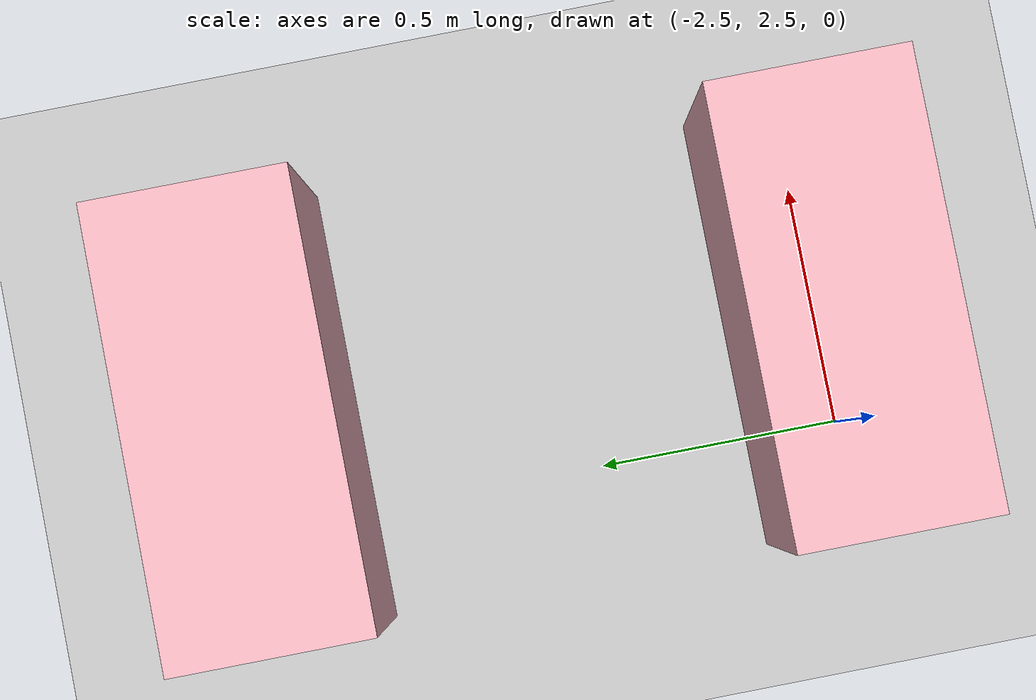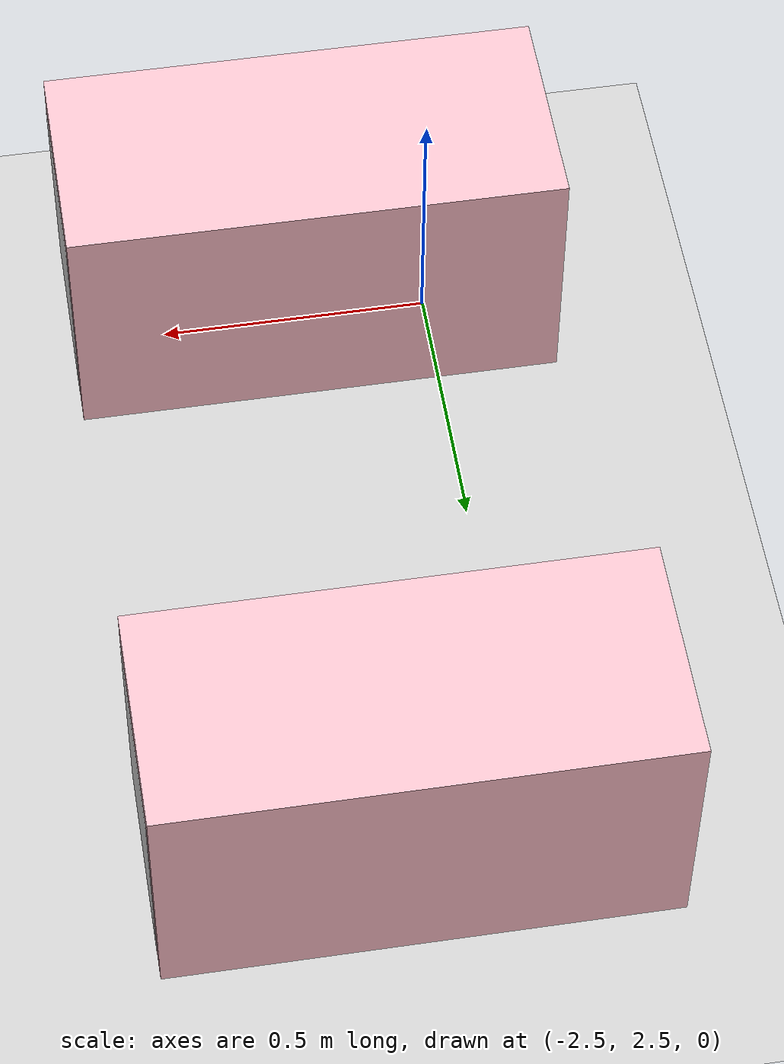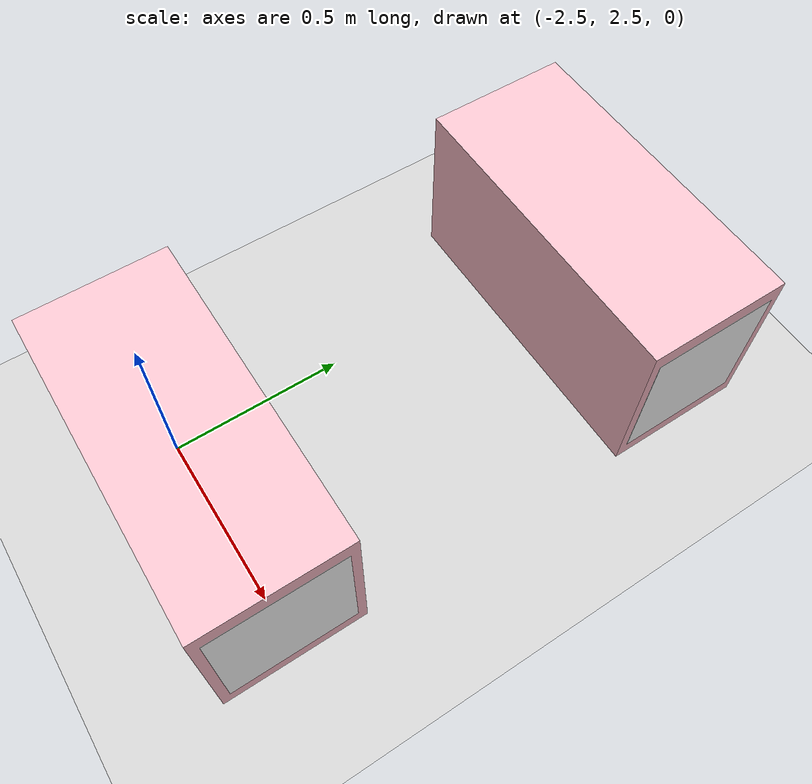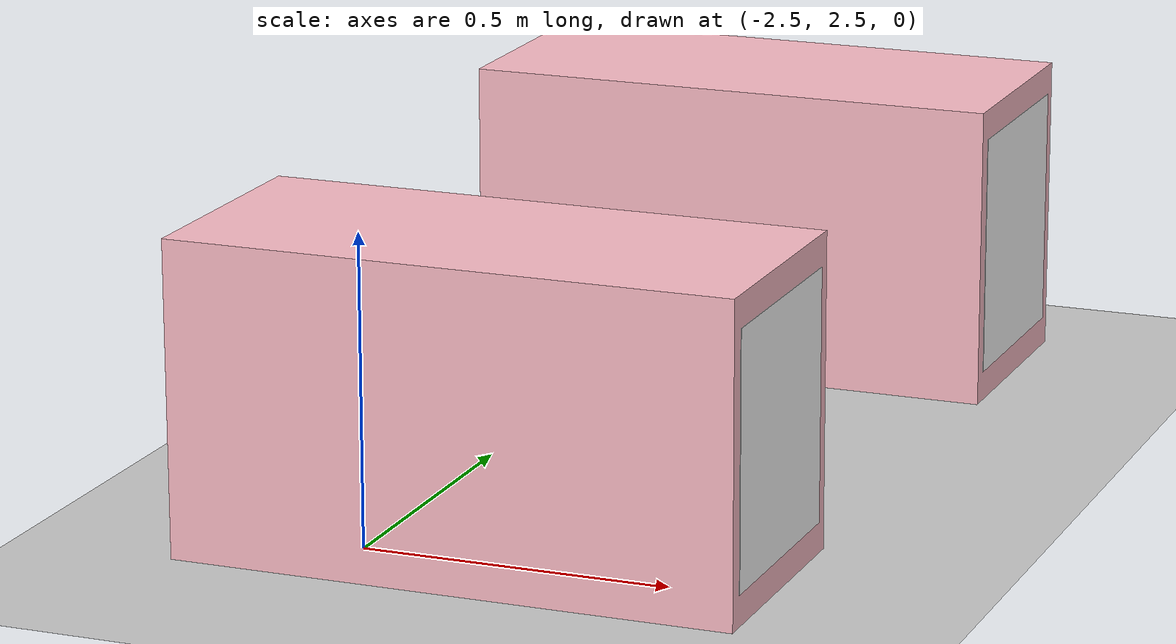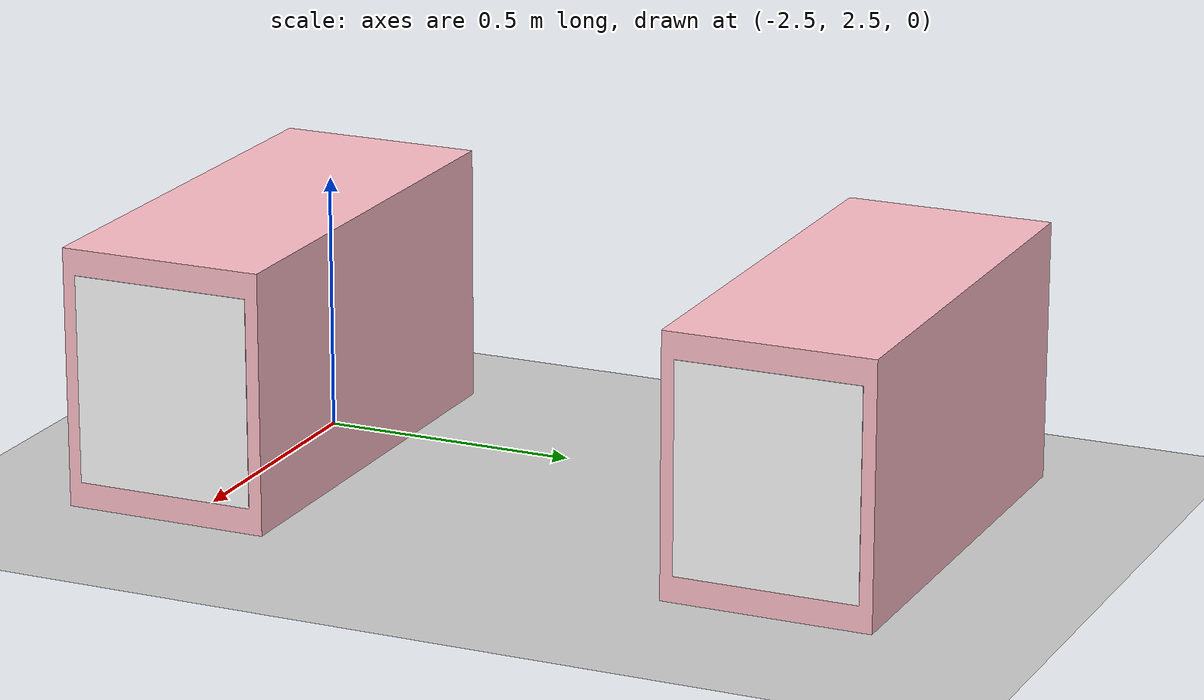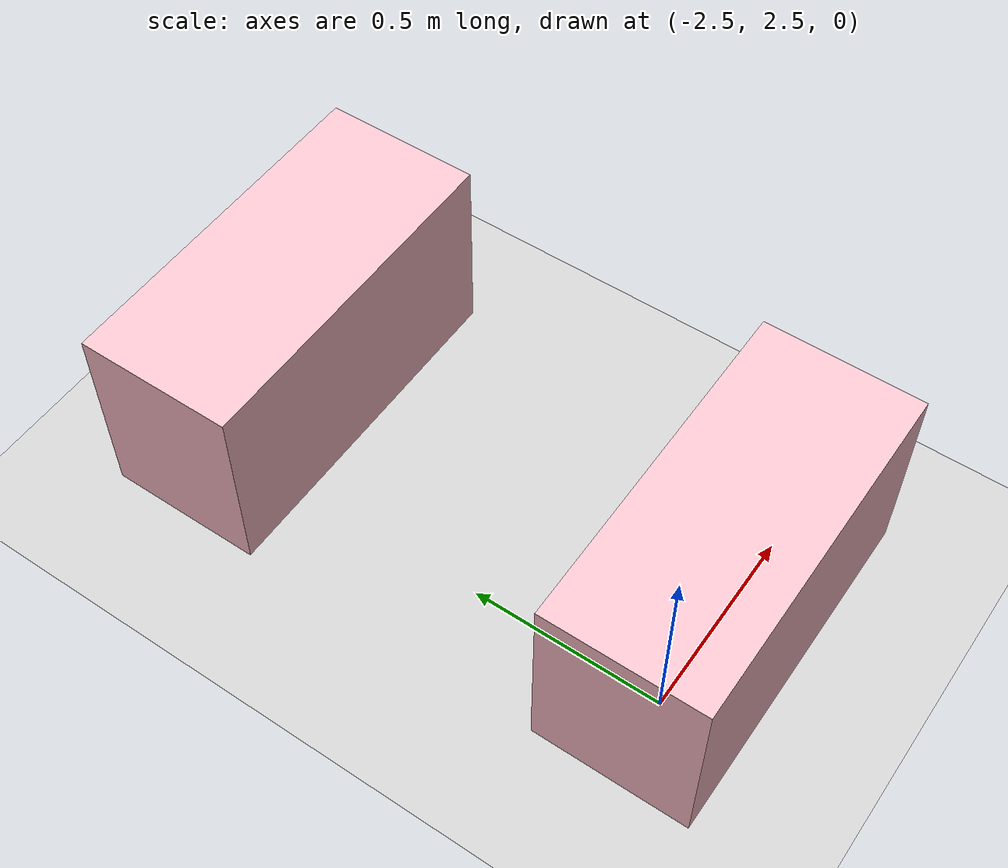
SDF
<sdf version="1.9">
 <world name="pig_pen_16units_world">
  <model name="ground_plane">
   <static>true</static>
   <link name="link">
    <collision name="collision">
     <geometry><plane><normal>0 0 1</normal><size>30 30</size></plane></geometry>
     <surface><friction><ode><mu>1.0</mu><mu2>1.0</mu2></ode></friction></surface>
    </collision>
    <visual name="visual">
     <geometry><plane><normal>0 0 1</normal><size>30 30</size></plane></geometry>
     <material>
      <ambient>0.8 0.8 0.8 1</ambient>
      <diffuse>0.8 0.8 0.8 1</diffuse>
      <specular>0.2 0.2 0.2 1</specular>
     </material>
    </visual>
   </link>
  </model>
  <include><uri>model://farm_pig</uri><name>pig5_b</name><pose>-2.275 3.685 0.27 0 0 0</pose></include>
  <include><uri>model://farm_pig</uri><name>pig6_a</name><pose>-2.275 2.495 0.27 0 0 0</pose></include>
 </world>
</sdf>
